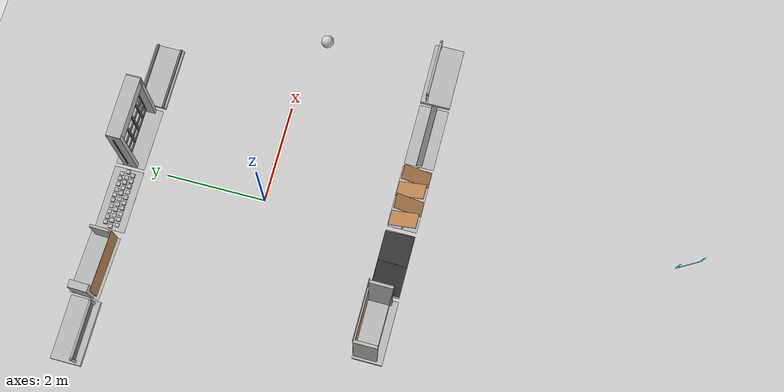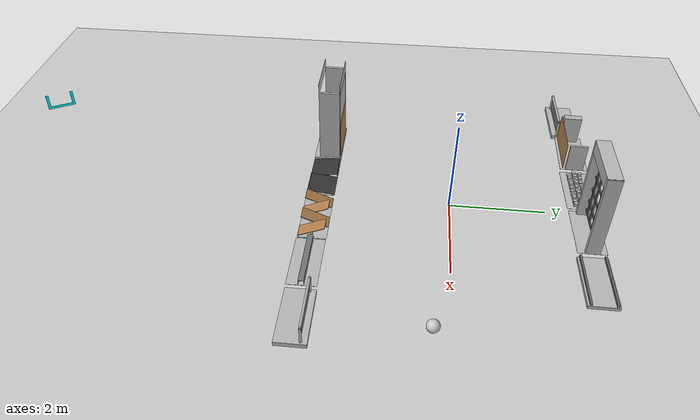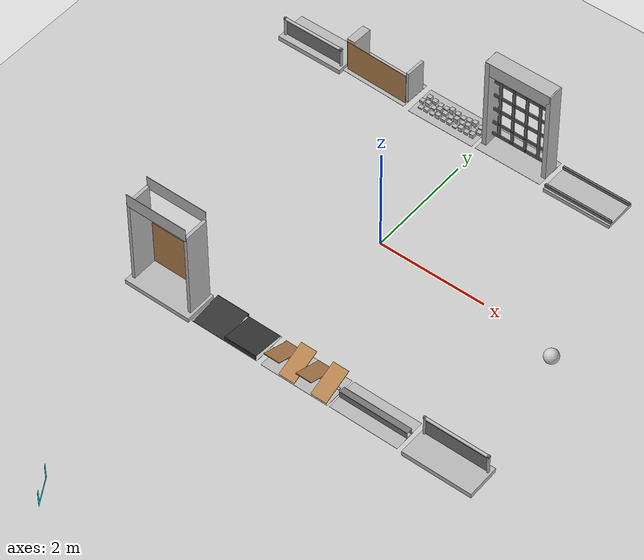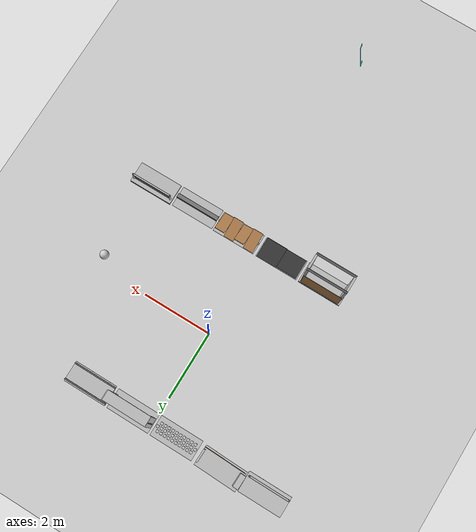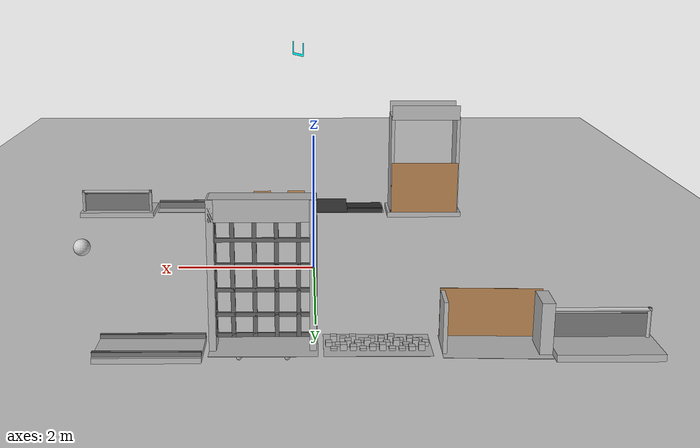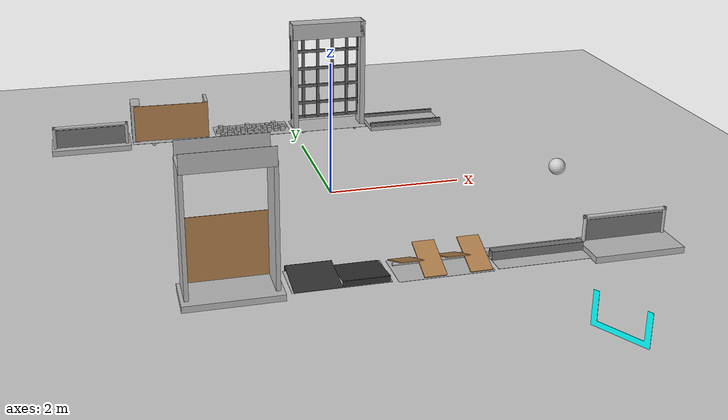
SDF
<sdf version="1.7">
 <world name="default">
  <light name="sun" type="directional">
   <pose>0 0 10 0 -0 0</pose>
   <diffuse>0.8 0.8 0.8 1</diffuse>
   <specular>0.2 0.2 0.2 1</specular>
   <attenuation>
    <range>1000</range>
    <constant>0.9</constant>
    <linear>0.01</linear>
    <quadratic>0.001</quadratic>
   </attenuation>
   <direction>-0.5 0.1 -0.9</direction>
   <spot><inner_angle>0</inner_angle><outer_angle>0</outer_angle><falloff>0</falloff></spot>
  </light>
  <model name="ground_plane">
   <static>1</static>
   <link name="link">
    <collision name="collision">
     <geometry><plane><normal>0 0 1</normal><size>100 100</size></plane></geometry>
     <surface>
      <contact><collide_bitmask>65535</collide_bitmask></contact>
      <friction><ode><mu>100</mu><mu2>50</mu2></ode></friction>
     </surface>
    </collision>
    <visual name="visual">
     <cast_shadows>0</cast_shadows>
     <geometry><plane><normal>0 0 1</normal><size>100 100</size></plane></geometry>
     <material>
      <script><uri>file://media/materials/scripts/gazebo.material</uri><name>Gazebo/Grey</name></script>
     </material>
    </visual>
   </link>
  </model>
  <model name="ball">
   <link name="link">
    <inertial>
     <mass>0.213</mass>
     <inertia>
      <ixx>0.00322667</ixx>
      <ixy>0</ixy>
      <ixz>0</ixz>
      <iyy>0.00322667</iyy>
      <iyz>0</iyz>
      <izz>0.00322667</izz>
     </inertia>
    </inertial>
    <visual name="visual">
     <material><ambient>0.8 0.8 0.8 1</ambient><diffuse>0.8 0.8 0.8 1</diffuse></material>
     <geometry><sphere><radius>0.127</radius></sphere></geometry>
    </visual>
    <collision name="collision">
     <geometry><sphere><radius>0.127</radius></sphere></geometry>
     <surface>
      <friction><ode><mu>2</mu><mu2>2</mu2></ode></friction>
      <contact>
       <ode>
        <max_vel>0.1</max_vel>
        <soft_cfm>0.8</soft_cfm>
        <soft_erp>0.8</soft_erp>
        <kd>200</kd>
        <kp>50000</kp>
        <min_depth>0.0001</min_depth>
       </ode>
      </contact>
     </surface>
    </collision>
   </link>
   <pose>3.49762 -0.331885 0.212737 -0.068682 -0.142198 -0.005084</pose>
  </model>
  <model name="TapePattern">
   <pose>0.174 -7.689 2.12 0.000148 0.000257 0.52429</pose>
   <link name="Body">
    <gravity>0</gravity>
    <pose>0.00127 -0.254 0.1016 1.5708 0 -1.5708</pose>
    <must_be_base_link>1</must_be_base_link>
    <velocity_decay><linear>0</linear><angular>0</angular></velocity_decay>
    <visual name="Body_visual">
     <pose>0.037283 -0.097987 -0.00127 0 -0 0</pose>
     <material><ambient>0 1 1 1</ambient><diffuse>0 1 1 1</diffuse><emissive>0.2 1 1 1</emissive></material>
     <geometry><mesh><scale>1 1 1</scale><uri>model://TapePattern/meshes/Body.STL</uri></mesh></geometry>
    </visual>
    <inertial>
     <inertia><ixx>1</ixx><ixy>0</ixy><ixz>0</ixz><iyy>1</iyy><iyz>0</iyz><izz>1</izz></inertia>
     <mass>1</mass>
    </inertial>
   </link>
  </model>
  <model name="TapePattern">
   <pose>0.174 -7.689 2.12 0.000148 0.000257 0.52429</pose>
   <link name="Body">
    <gravity>0</gravity>
    <pose>0.00127 -0.254 0.1016 1.5708 0 -1.5708</pose>
    <must_be_base_link>1</must_be_base_link>
    <velocity_decay><linear>0</linear><angular>0</angular></velocity_decay>
    <visual name="Body_visual">
     <pose>0.037283 -0.097987 -0.00127 0 -0 0</pose>
     <material><ambient>0 1 1 1</ambient><diffuse>0 1 1 1</diffuse><emissive>0.2 1 1 1</emissive></material>
     <geometry><mesh><scale>1 1 1</scale><uri>model://TapePattern/meshes/Body.STL</uri></mesh></geometry>
    </visual>
    <inertial>
     <inertia><ixx>1</ixx><ixy>0</ixy><ixz>0</ixz><iyy>1</iyy><iyz>0</iyz><izz>1</izz></inertia>
     <mass>1</mass>
    </inertial>
   </link>
  </model>
  <model name="frc2016_rockwall">
   <static>1</static>
   <link name="link">
    <inertial>
     <mass>10</mass>
     <pose>0 0 0.08974 0 -0 0</pose>
     <inertia><ixx>0.327091</ixx><ixy>0</ixy><ixz>0</ixz><iyy>1.37417</iyy><iyz>0</iyz><izz>1.64109</izz></inertia>
    </inertial>
    <visual name="platform">
     <pose>0 0 0.06432 0 -0 0</pose>
     <geometry><box><size>1.27 0.5969 0.003175</size></box></geometry>
    </visual>
    <collision name="platform">
     <pose>0 0 0.06432 0 -0 0</pose>
     <geometry><box><size>1.27 0.5969 0.003175</size></box></geometry>
    </collision>
    <visual name="up1">
     <pose>0 0.05166 0.12537 0 -0 0</pose>
     <geometry><box><size>1.27 0.00462 0.11892</size></box></geometry>
     <material><ambient>0.46 0.46 0.46 1</ambient><diffuse>0.46 0.46 0.46 1</diffuse></material>
    </visual>
    <collision name="up1">
     <pose>0 0.05166 0.12537 0 -0 0</pose>
     <geometry><box><size>1.27 0.00462 0.11892</size></box></geometry>
    </collision>
    <visual name="up2">
     <pose>0 -0.05801 0.12537 0 -0 0</pose>
     <geometry><box><size>1.27 0.00462 0.11892</size></box></geometry>
     <material><ambient>0.46 0.46 0.46 1</ambient><diffuse>0.46 0.46 0.46 1</diffuse></material>
    </visual>
    <collision name="up2">
     <pose>0 -0.05801 0.12537 0 -0 0</pose>
     <geometry><box><size>1.27 0.00462 0.11892</size></box></geometry>
    </collision>
    <visual name="top">
     <pose>0 -0.00249 0.18252 0 -0 0</pose>
     <geometry><box><size>1.27 0.1143 0.00462</size></box></geometry>
     <material><ambient>0.46 0.46 0.46 1</ambient><diffuse>0.46 0.46 0.46 1</diffuse></material>
    </visual>
    <collision name="top">
     <pose>0 -0.00249 0.18252 0 -0 0</pose>
     <geometry><box><size>1.27 0.1143 0.00462</size></box></geometry>
    </collision>
   </link>
   <pose>2.06823 -2.76985 0.027 0 -0 0</pose>
  </model>
  <model name="frc2016_moat">
   <static>1</static>
   <link name="link">
    <inertial>
     <mass>10</mass>
     <pose>0 0 0.06738 0 -0 0</pose>
     <inertia><ixx>0.312195</ixx><ixy>0</ixy><ixz>0</ixz><iyy>1.35927</iyy><iyz>0</iyz><izz>1.64109</izz></inertia>
    </inertial>
    <visual name="platform">
     <pose>0 0 0.0381 0 -0 0</pose>
     <geometry><box><size>1.27 0.5969 0.0762</size></box></geometry>
    </visual>
    <collision name="platform">
     <pose>0 0 0.0381 0 -0 0</pose>
     <geometry><box><size>1.27 0.5969 0.0762</size></box></geometry>
    </collision>
    <visual name="tube1_side1">
     <pose>0 -0.25876 0.10301 0 -0 0</pose>
     <geometry><box><size>1.27 0.003175 0.0635</size></box></geometry>
     <material><ambient>0.46 0.46 0.46 1</ambient><diffuse>0.46 0.46 0.46 1</diffuse></material>
    </visual>
    <collision name="tube1_side1">
     <pose>0 -0.25876 0.10301 0 -0 0</pose>
     <geometry><box><size>1.27 0.003175 0.0635</size></box></geometry>
    </collision>
    <visual name="tube1_side2">
     <pose>0 -0.22384 0.10301 0 -0 0</pose>
     <geometry><box><size>1.27 0.003175 0.0635</size></box></geometry>
     <material><ambient>0.46 0.46 0.46 1</ambient><diffuse>0.46 0.46 0.46 1</diffuse></material>
    </visual>
    <collision name="tube1_side2">
     <pose>0 -0.22384 0.10301 0 -0 0</pose>
     <geometry><box><size>1.27 0.003175 0.0635</size></box></geometry>
    </collision>
    <visual name="tube1_top">
     <pose>0 -0.2413 0.13317 0 -0 0</pose>
     <geometry><box><size>1.27 0.0381 0.003175</size></box></geometry>
     <material><ambient>0.46 0.46 0.46 1</ambient><diffuse>0.46 0.46 0.46 1</diffuse></material>
    </visual>
    <collision name="tube1_top">
     <pose>0 -0.2413 0.13317 0 -0 0</pose>
     <geometry><box><size>1.27 0.0381 0.003175</size></box></geometry>
    </collision>
    <visual name="tube2_side1">
     <pose>0 0.22384 0.10301 0 -0 0</pose>
     <geometry><box><size>1.27 0.003175 0.0635</size></box></geometry>
     <material><ambient>0.46 0.46 0.46 1</ambient><diffuse>0.46 0.46 0.46 1</diffuse></material>
    </visual>
    <collision name="tube2_side1">
     <pose>0 0.22384 0.10301 0 -0 0</pose>
     <geometry><box><size>1.27 0.003175 0.0635</size></box></geometry>
    </collision>
    <visual name="tube2_side2">
     <pose>0 0.25876 0.10301 0 -0 0</pose>
     <geometry><box><size>1.27 0.003175 0.0635</size></box></geometry>
     <material><ambient>0.46 0.46 0.46 1</ambient><diffuse>0.46 0.46 0.46 1</diffuse></material>
    </visual>
    <collision name="tube2_side2">
     <pose>0 0.25876 0.10301 0 -0 0</pose>
     <geometry><box><size>1.27 0.003175 0.0635</size></box></geometry>
    </collision>
    <visual name="tube2_top">
     <pose>0 0.2413 0.13317 0 -0 0</pose>
     <geometry><box><size>1.27 0.0381 0.003175</size></box></geometry>
     <material><ambient>0.46 0.46 0.46 1</ambient><diffuse>0.46 0.46 0.46 1</diffuse></material>
    </visual>
    <collision name="tube2_top">
     <pose>0 0.2413 0.13317 0 -0 0</pose>
     <geometry><box><size>1.27 0.0381 0.003175</size></box></geometry>
    </collision>
   </link>
   <pose>1.95991 2.75242 -0.019486 0 -0 0</pose>
  </model>
  <model name="frc2016_roughterrain">
   <static>1</static>
   <link name="link">
    <visual name="platform">
     <pose>0 0 0.08269 0 -0 0</pose>
     <geometry><box><size>1.27 0.5969 0.003175</size></box></geometry>
    </visual>
    <collision name="platform">
     <pose>0 0 0.08269 0 -0 0</pose>
     <geometry><box><size>1.27 0.5969 0.003175</size></box></geometry>
    </collision>
    <visual name="row1_block1_sm">
     <pose>0.51435 0.1143 0.09698 0 -0 0</pose>
     <geometry><box><size>0.0762 0.0762 0.0254</size></box></geometry>
    </visual>
    <collision name="row1_block1_sm">
     <pose>0.51435 0.1143 0.09698 0 -0 0</pose>
     <geometry><box><size>0.0762 0.0762 0.0254</size></box></geometry>
    </collision>
    <visual name="row1_block2_lg">
     <pose>0.40005 0.1143 0.12238 0 -0 0</pose>
     <geometry><box><size>0.0762 0.0762 0.0762</size></box></geometry>
    </visual>
    <collision name="row1_block2_lg">
     <pose>0.40005 0.1143 0.12238 0 -0 0</pose>
     <geometry><box><size>0.0762 0.0762 0.0762</size></box></geometry>
    </collision>
    <visual name="row1_block3_md">
     <pose>0.28575 0.1143 0.10968 0 -0 0</pose>
     <geometry><box><size>0.0762 0.0762 0.0508</size></box></geometry>
    </visual>
    <collision name="row1_block3_md">
     <pose>0.28575 0.1143 0.10968 0 -0 0</pose>
     <geometry><box><size>0.0762 0.0762 0.0508</size></box></geometry>
    </collision>
    <visual name="row1_block4_sm">
     <pose>0.17145 0.1143 0.09698 0 -0 0</pose>
     <geometry><box><size>0.0762 0.0762 0.0254</size></box></geometry>
    </visual>
    <collision name="row1_block4_sm">
     <pose>0.17145 0.1143 0.09698 0 -0 0</pose>
     <geometry><box><size>0.0762 0.0762 0.0254</size></box></geometry>
    </collision>
    <visual name="row1_block5_md">
     <pose>0.05715 0.1143 0.10968 0 -0 0</pose>
     <geometry><box><size>0.0762 0.0762 0.0508</size></box></geometry>
    </visual>
    <collision name="row1_block5_md">
     <pose>0.05715 0.1143 0.10968 0 -0 0</pose>
     <geometry><box><size>0.0762 0.0762 0.0508</size></box></geometry>
    </collision>
    <visual name="row1_block6_lg">
     <pose>-0.05715 0.1143 0.12238 0 -0 0</pose>
     <geometry><box><size>0.0762 0.0762 0.0762</size></box></geometry>
    </visual>
    <collision name="row1_block6_lg">
     <pose>-0.05715 0.1143 0.12238 0 -0 0</pose>
     <geometry><box><size>0.0762 0.0762 0.0762</size></box></geometry>
    </collision>
    <visual name="row1_block7_sm">
     <pose>-0.17145 0.1143 0.09698 0 -0 0</pose>
     <geometry><box><size>0.0762 0.0762 0.0254</size></box></geometry>
    </visual>
    <collision name="row1_block7_sm">
     <pose>-0.17145 0.1143 0.09698 0 -0 0</pose>
     <geometry><box><size>0.0762 0.0762 0.0254</size></box></geometry>
    </collision>
    <visual name="row1_block8_sm">
     <pose>-0.28575 0.1143 0.09698 0 -0 0</pose>
     <geometry><box><size>0.0762 0.0762 0.0254</size></box></geometry>
    </visual>
    <collision name="row1_block8_sm">
     <pose>-0.28575 0.1143 0.09698 0 -0 0</pose>
     <geometry><box><size>0.0762 0.0762 0.0254</size></box></geometry>
    </collision>
    <visual name="row1_block9_md">
     <pose>-0.40005 0.1143 0.10968 0 -0 0</pose>
     <geometry><box><size>0.0762 0.0762 0.0508</size></box></geometry>
    </visual>
    <collision name="row1_block9_md">
     <pose>-0.40005 0.1143 0.10968 0 -0 0</pose>
     <geometry><box><size>0.0762 0.0762 0.0508</size></box></geometry>
    </collision>
    <visual name="row1_block10_lg">
     <pose>-0.51435 0.1143 0.12238 0 -0 0</pose>
     <geometry><box><size>0.0762 0.0762 0.0762</size></box></geometry>
    </visual>
    <collision name="row1_block10_lg">
     <pose>-0.51435 0.1143 0.12238 0 -0 0</pose>
     <geometry><box><size>0.0762 0.0762 0.0762</size></box></geometry>
    </collision>
    <visual name="row2_block1_md">
     <pose>0.5715 0 0.10968 0 -0 0</pose>
     <geometry><box><size>0.0762 0.0762 0.0508</size></box></geometry>
    </visual>
    <collision name="row2_block1_md">
     <pose>0.5715 0 0.10968 0 -0 0</pose>
     <geometry><box><size>0.0762 0.0762 0.0508</size></box></geometry>
    </collision>
    <visual name="row2_block2_sm">
     <pose>0.4572 0 0.09698 0 -0 0</pose>
     <geometry><box><size>0.0762 0.0762 0.0254</size></box></geometry>
    </visual>
    <collision name="row2_block2_sm">
     <pose>0.4572 0 0.09698 0 -0 0</pose>
     <geometry><box><size>0.0762 0.0762 0.0254</size></box></geometry>
    </collision>
    <visual name="row2_block3_lg">
     <pose>0.3429 0 0.12238 0 -0 0</pose>
     <geometry><box><size>0.0762 0.0762 0.0762</size></box></geometry>
    </visual>
    <collision name="row2_block3_lg">
     <pose>0.3429 0 0.12238 0 -0 0</pose>
     <geometry><box><size>0.0762 0.0762 0.0762</size></box></geometry>
    </collision>
    <visual name="row2_block4_md">
     <pose>0.2286 0 0.10968 0 -0 0</pose>
     <geometry><box><size>0.0762 0.0762 0.0508</size></box></geometry>
    </visual>
    <collision name="row2_block4_md">
     <pose>0.2286 0 0.10968 0 -0 0</pose>
     <geometry><box><size>0.0762 0.0762 0.0508</size></box></geometry>
    </collision>
    <visual name="row2_block5_lg">
     <pose>0.1143 0 0.12238 0 -0 0</pose>
     <geometry><box><size>0.0762 0.0762 0.0762</size></box></geometry>
    </visual>
    <collision name="row2_block5_lg">
     <pose>0.1143 0 0.12238 0 -0 0</pose>
     <geometry><box><size>0.0762 0.0762 0.0762</size></box></geometry>
    </collision>
    <visual name="row2_block6_sm">
     <pose>0 0 0.09698 0 -0 0</pose>
     <geometry><box><size>0.0762 0.0762 0.0254</size></box></geometry>
    </visual>
    <collision name="row2_block6_sm">
     <pose>0 0 0.09698 0 -0 0</pose>
     <geometry><box><size>0.0762 0.0762 0.0254</size></box></geometry>
    </collision>
    <visual name="row2_block7_md">
     <pose>-0.1143 0 0.10968 0 -0 0</pose>
     <geometry><box><size>0.0762 0.0762 0.0508</size></box></geometry>
    </visual>
    <collision name="row2_block7_md">
     <pose>-0.1143 0 0.10968 0 -0 0</pose>
     <geometry><box><size>0.0762 0.0762 0.0508</size></box></geometry>
    </collision>
    <visual name="row2_block8_lg">
     <pose>-0.2286 0 0.12238 0 -0 0</pose>
     <geometry><box><size>0.0762 0.0762 0.0762</size></box></geometry>
    </visual>
    <collision name="row2_block8_lg">
     <pose>-0.2286 0 0.12238 0 -0 0</pose>
     <geometry><box><size>0.0762 0.0762 0.0762</size></box></geometry>
    </collision>
    <visual name="row2_block9_sm">
     <pose>-0.3429 0 0.09698 0 -0 0</pose>
     <geometry><box><size>0.0762 0.0762 0.0254</size></box></geometry>
    </visual>
    <collision name="row2_block9_sm">
     <pose>-0.3429 0 0.09698 0 -0 0</pose>
     <geometry><box><size>0.0762 0.0762 0.0254</size></box></geometry>
    </collision>
    <visual name="row2_block10_lg">
     <pose>-0.4572 0 0.12238 0 -0 0</pose>
     <geometry><box><size>0.0762 0.0762 0.0762</size></box></geometry>
    </visual>
    <collision name="row2_block10_lg">
     <pose>-0.4572 0 0.12238 0 -0 0</pose>
     <geometry><box><size>0.0762 0.0762 0.0762</size></box></geometry>
    </collision>
    <visual name="row2_block11_md">
     <pose>-0.5715 0 0.10968 0 -0 0</pose>
     <geometry><box><size>0.0762 0.0762 0.0508</size></box></geometry>
    </visual>
    <collision name="row2_block11_md">
     <pose>-0.5715 0 0.10968 0 -0 0</pose>
     <geometry><box><size>0.0762 0.0762 0.0508</size></box></geometry>
    </collision>
    <visual name="row3_block1_lg">
     <pose>0.51435 -0.1143 0.12238 0 -0 0</pose>
     <geometry><box><size>0.0762 0.0762 0.0762</size></box></geometry>
    </visual>
    <collision name="row3_block1_lg">
     <pose>0.51435 -0.1143 0.12238 0 -0 0</pose>
     <geometry><box><size>0.0762 0.0762 0.0762</size></box></geometry>
    </collision>
    <visual name="row3_block2_md">
     <pose>0.40005 -0.1143 0.10968 0 -0 0</pose>
     <geometry><box><size>0.0762 0.0762 0.0508</size></box></geometry>
    </visual>
    <collision name="row3_block2_md">
     <pose>0.40005 -0.1143 0.10968 0 -0 0</pose>
     <geometry><box><size>0.0762 0.0762 0.0508</size></box></geometry>
    </collision>
    <visual name="row3_block3_lg">
     <pose>0.28575 -0.1143 0.12238 0 -0 0</pose>
     <geometry><box><size>0.0762 0.0762 0.0762</size></box></geometry>
    </visual>
    <collision name="row3_block3_lg">
     <pose>0.28575 -0.1143 0.12238 0 -0 0</pose>
     <geometry><box><size>0.0762 0.0762 0.0762</size></box></geometry>
    </collision>
    <visual name="row3_block4_sm">
     <pose>0.17145 -0.1143 0.09698 0 -0 0</pose>
     <geometry><box><size>0.0762 0.0762 0.0254</size></box></geometry>
    </visual>
    <collision name="row3_block4_sm">
     <pose>0.17145 -0.1143 0.09698 0 -0 0</pose>
     <geometry><box><size>0.0762 0.0762 0.0254</size></box></geometry>
    </collision>
    <visual name="row3_block5_md">
     <pose>0.05715 -0.1143 0.10968 0 -0 0</pose>
     <geometry><box><size>0.0762 0.0762 0.0508</size></box></geometry>
    </visual>
    <collision name="row3_block5_md">
     <pose>0.05715 -0.1143 0.10968 0 -0 0</pose>
     <geometry><box><size>0.0762 0.0762 0.0508</size></box></geometry>
    </collision>
    <visual name="row3_block6_md">
     <pose>-0.05715 -0.1143 0.10968 0 -0 0</pose>
     <geometry><box><size>0.0762 0.0762 0.0508</size></box></geometry>
    </visual>
    <collision name="row3_block6_md">
     <pose>-0.05715 -0.1143 0.10968 0 -0 0</pose>
     <geometry><box><size>0.0762 0.0762 0.0508</size></box></geometry>
    </collision>
    <visual name="row3_block7_lg">
     <pose>-0.17145 -0.1143 0.12238 0 -0 0</pose>
     <geometry><box><size>0.0762 0.0762 0.0762</size></box></geometry>
    </visual>
    <collision name="row3_block7_lg">
     <pose>-0.17145 -0.1143 0.12238 0 -0 0</pose>
     <geometry><box><size>0.0762 0.0762 0.0762</size></box></geometry>
    </collision>
    <visual name="row3_block8_sm">
     <pose>-0.28575 -0.1143 0.09698 0 -0 0</pose>
     <geometry><box><size>0.0762 0.0762 0.0254</size></box></geometry>
    </visual>
    <collision name="row3_block8_sm">
     <pose>-0.28575 -0.1143 0.09698 0 -0 0</pose>
     <geometry><box><size>0.0762 0.0762 0.0254</size></box></geometry>
    </collision>
    <visual name="row3_block9_md">
     <pose>-0.40005 -0.1143 0.10968 0 -0 0</pose>
     <geometry><box><size>0.0762 0.0762 0.0508</size></box></geometry>
    </visual>
    <collision name="row3_block9_md">
     <pose>-0.40005 -0.1143 0.10968 0 -0 0</pose>
     <geometry><box><size>0.0762 0.0762 0.0508</size></box></geometry>
    </collision>
    <visual name="row3_block10_sm">
     <pose>-0.51435 -0.1143 0.09698 0 -0 0</pose>
     <geometry><box><size>0.0762 0.0762 0.0254</size></box></geometry>
    </visual>
    <collision name="row3_block10_sm">
     <pose>-0.51435 -0.1143 0.09698 0 -0 0</pose>
     <geometry><box><size>0.0762 0.0762 0.0254</size></box></geometry>
    </collision>
   </link>
   <pose>-0.722604 2.76071 -0.008615 0 -0 0</pose>
  </model>
  <model name="frc2016_ramparts">
   <static>1</static>
   <link name="link">
    <visual name="platform">
     <pose>0 0 0.06967 0 -0 0</pose>
     <geometry><box><size>1.27 0.5969 0.003175</size></box></geometry>
    </visual>
    <collision name="platform">
     <pose>0 0 0.06967 0 -0 0</pose>
     <geometry><box><size>1.27 0.5969 0.003175</size></box></geometry>
    </collision>
    <visual name="ramp1">
     <pose>0.30472 0.00588 0.1109 -0.13 0 0</pose>
     <geometry><box><size>0.60957 0.588891 0.00462</size></box></geometry>
     <material><ambient>0.2 0.2 0.2 1</ambient><diffuse>0.2 0.2 0.2 1</diffuse></material>
    </visual>
    <collision name="ramp1">
     <pose>0.30472 0.00588 0.1109 -0.13 0 0</pose>
     <geometry><box><size>0.60957 0.588891 0.00462</size></box></geometry>
    </collision>
    <visual name="up1">
     <pose>0.30472 -0.28806 0.11072 0 -0 0</pose>
     <geometry><box><size>0.60957 0.00462 0.07872</size></box></geometry>
     <material><ambient>0.2 0.2 0.2 1</ambient><diffuse>0.2 0.2 0.2 1</diffuse></material>
    </visual>
    <collision name="up1">
     <pose>0.30472 -0.28806 0.11072 0 -0 0</pose>
     <geometry><box><size>0.60957 0.00462 0.07872</size></box></geometry>
    </collision>
    <visual name="ramp2">
     <pose>-0.30472 -0.00619 0.1109 0.13 -0 0</pose>
     <geometry><box><size>0.60957 0.588891 0.00462</size></box></geometry>
     <material><ambient>0.2 0.2 0.2 1</ambient><diffuse>0.2 0.2 0.2 1</diffuse></material>
    </visual>
    <collision name="ramp2">
     <pose>-0.30472 -0.00619 0.1109 0.13 -0 0</pose>
     <geometry><box><size>0.60957 0.588891 0.00462</size></box></geometry>
    </collision>
    <visual name="up2">
     <pose>-0.30472 0.28806 0.11072 0 -0 0</pose>
     <geometry><box><size>0.60957 0.00462 0.07872</size></box></geometry>
     <material><ambient>0.2 0.2 0.2 1</ambient><diffuse>0.2 0.2 0.2 1</diffuse></material>
    </visual>
    <collision name="up2">
     <pose>-0.30472 0.28806 0.11072 0 -0 0</pose>
     <geometry><box><size>0.60957 0.00462 0.07872</size></box></geometry>
    </collision>
   </link>
   <pose>-0.597075 -2.76033 0.015 0 -0 0</pose>
  </model>
  <model name="lowbar1">
   <link name="base">
    <inertial>
     <mass>50</mass>
     <inertia>
      <ixx>0.035543</ixx>
      <ixy>0</ixy>
      <ixz>0</ixz>
      <iyy>0.134412</iyy>
      <iyz>0</iyz>
      <izz>0.165376</izz>
     </inertia>
    </inertial>
    <visual name="platform">
     <pose>0 0 0.039065 0 -0 0</pose>
     <geometry><box><size>1.27 0.6 0.089</size></box></geometry>
    </visual>
    <collision name="platform">
     <pose>0 0 0.039065 0 -0 0</pose>
     <geometry><box><size>1.27 0.6 0.089</size></box></geometry>
    </collision>
    <visual name="right_column">
     <pose>-0.57845 -0.18464 0.26863 0 -0 0</pose>
     <geometry><cylinder><radius>0.0254</radius><length>0.381</length></cylinder></geometry>
    </visual>
    <collision name="right_column">
     <pose>-0.57845 -0.18464 0.26863 0 -0 0</pose>
     <geometry><cylinder><radius>0.0254</radius><length>0.381</length></cylinder></geometry>
    </collision>
    <visual name="left_column">
     <pose>0.57845 -0.18464 0.26863 0 -0 0</pose>
     <geometry><cylinder><radius>0.0254</radius><length>0.381</length></cylinder></geometry>
    </visual>
    <collision name="left_column">
     <pose>0.57845 -0.18464 0.26863 0 -0 0</pose>
     <geometry><cylinder><radius>0.0254</radius><length>0.381</length></cylinder></geometry>
    </collision>
    <visual name="horizontal">
     <pose>0 -0.18464 0.43556 0 1.5707 0</pose>
     <geometry><cylinder><radius>0.0254</radius><length>1.2018</length></cylinder></geometry>
    </visual>
    <collision name="horizontal">
     <pose>0 -0.18464 0.43556 0 1.5707 0</pose>
     <geometry><cylinder><radius>0.0254</radius><length>1.2018</length></cylinder></geometry>
    </collision>
   </link>
   <link name="wall">
    <pose>0 -0.1778 0.24323 0 -0 0</pose>
    <inertial>
     <mass>1</mass>
     <inertia>
      <ixx>0.00774528</ixx>
      <ixy>0</ixy>
      <ixz>0</ixz>
      <iyy>0.116613</iyy>
      <iyz>0</iyz>
      <izz>0.108874</izz>
     </inertia>
    </inertial>
    <visual name="visual">
     <geometry><box><size>1.1176 0.00635 0.3</size></box></geometry>
     <material><ambient>0.46 0.46 0.46 1</ambient><diffuse>0.46 0.46 0.46 1</diffuse></material>
    </visual>
    <collision name="collision"><geometry><box><size>1.143 0.00635 0.3</size></box></geometry></collision>
   </link>
   <joint name="bar_joint" type="revolute">
    <pose>0 0 0.36378 0 -0 0</pose>
    <parent>base</parent>
    <child>wall</child>
    <axis>
     <xyz>1 0 0</xyz>
     <limit><lower>-1.5707</lower><upper>1.5707</upper></limit>
     <dynamics>
      <damping>1</damping>
      <friction>1</friction>
      <spring_reference>0</spring_reference>
      <spring_stiffness>0</spring_stiffness>
     </dynamics>
    </axis>
   </joint>
   <pose>-3.41311 2.77187 0.005428 2.5e-05 -0 -1.1e-05</pose>
  </model>
  <model name="frc2016_sallyport">
   <link name="base">
    <inertial>
     <mass>50</mass>
     <pose>0 0 0.35406 0 -0 0</pose>
     <inertia><ixx>0.727808</ixx><ixy>0</ixy><ixz>0</ixz><iyy>1.77488</iyy><iyz>0</iyz><izz>1.64109</izz></inertia>
    </inertial>
    <visual name="platform">
     <pose>0 0 0.06974 0 -0 0</pose>
     <geometry><box><size>1.27 0.5969 0.003175</size></box></geometry>
    </visual>
    <collision name="platform">
     <pose>0 0 0.06974 0 -0 0</pose>
     <geometry><box><size>1.27 0.5969 0.003175</size></box></geometry>
    </collision>
    <visual name="left_column">
     <pose>-0.5588 0.00318 0.38876 0 -0 0</pose>
     <geometry><box><size>0.1524 0.38735 0.635</size></box></geometry>
    </visual>
    <collision name="left_column">
     <pose>-0.5588 0.00318 0.38876 0 -0 0</pose>
     <geometry><box><size>0.1524 0.38735 0.635</size></box></geometry>
    </collision>
    <visual name="right_column">
     <pose>0.6096 0.00635 0.38876 0 -0 0</pose>
     <geometry><box><size>0.0508 0.381 0.635</size></box></geometry>
    </visual>
    <collision name="right_column">
     <pose>0.6096 0.00635 0.38876 0 -0 0</pose>
     <geometry><box><size>0.0508 0.381 0.635</size></box></geometry>
    </collision>
    <visual name="castor1">
     <pose>-0.45886 0.15389 0.03487 0 -0 0</pose>
     <geometry><sphere><radius>0.03487</radius></sphere></geometry>
    </visual>
    <collision name="castor1">
     <pose>-0.45886 0.15389 0.03487 0 -0 0</pose>
     <geometry><sphere><radius>0.03487</radius></sphere></geometry>
    </collision>
    <visual name="castor2">
     <pose>-0.28117 -0.22559 0.03487 0 -0 0</pose>
     <geometry><sphere><radius>0.03487</radius></sphere></geometry>
    </visual>
    <collision name="castor2">
     <pose>-0.28117 -0.22559 0.03487 0 -0 0</pose>
     <geometry><sphere><radius>0.03487</radius></sphere></geometry>
    </collision>
    <visual name="castor3">
     <pose>0.27933 -0.2272 0.03487 0 -0 0</pose>
     <geometry><sphere><radius>0.03487</radius></sphere></geometry>
    </visual>
    <collision name="castor3">
     <pose>0.27933 -0.2272 0.03487 0 -0 0</pose>
     <geometry><sphere><radius>0.03487</radius></sphere></geometry>
    </collision>
    <visual name="castor4">
     <pose>0.4571 0.15424 0.03487 0 -0 0</pose>
     <geometry><sphere><radius>0.03487</radius></sphere></geometry>
    </visual>
    <collision name="castor4">
     <pose>0.4571 0.15424 0.03487 0 -0 0</pose>
     <geometry><sphere><radius>0.03487</radius></sphere></geometry>
    </collision>
   </link>
   <link name="door">
    <pose>0.02255 -0.24321 0.40332 0 -0 0</pose>
    <inertial>
     <pose>0 0 0 -1.5707 0 0</pose>
     <mass>2</mass>
     <inertia>
      <ixx>0.0619421</ixx>
      <ixy>0</ixy>
      <ixz>0</ixz>
      <iyy>0.246462</iyy>
      <iyz>0</iyz>
      <izz>0.30839</izz>
     </inertia>
    </inertial>
    <visual name="visual">
     <geometry><box><size>1.21603 0.00635 0.6096</size></box></geometry>
     <material><script><name>Gazebo/WoodFloor</name><uri>__default__</uri></script></material>
    </visual>
    <collision name="collision"><geometry><box><size>1.21603 0.00635 0.6096</size></box></geometry></collision>
   </link>
   <joint name="door_joint" type="revolute">
    <pose>-0.608015 0 0 0 -0 0</pose>
    <parent>base</parent>
    <child>door</child>
    <axis>
     <xyz>0 0 1</xyz>
     <limit><lower>-3.1415</lower><upper>0</upper></limit>
     <dynamics><spring_reference>0</spring_reference><spring_stiffness>0</spring_stiffness></dynamics>
    </axis>
   </joint>
   <pose>-2.10598 2.81294 0.000411 -0.002661 -0 -0.029545</pose>
  </model>
  <model name="frc2016_drawbridge">
   <link name="base">
    <inertial>
     <mass>10</mass>
     <pose>0 0 1 0 -0 0</pose>
     <inertia><ixx>3.64907</ixx><ixy>0</ixy><ixz>0</ixz><iyy>4.67075</iyy><iyz>0</iyz><izz>1.66649</izz></inertia>
    </inertial>
    <visual name="platform">
     <pose>0 0 0.0425 0 -0 0</pose>
     <geometry><box><size>1.27 0.5969 0.085</size></box></geometry>
    </visual>
    <collision name="platform">
     <pose>0 0 0.0425 0 -0 0</pose>
     <geometry><box><size>1.27 0.5969 0.085</size></box></geometry>
    </collision>
    <visual name="right_wall">
     <pose>0.55879 0.04444 0.889 0 -0 0</pose>
     <geometry><box><size>0.05715 0.45698 1.77165</size></box></geometry>
    </visual>
    <collision name="right_wall">
     <pose>0.55879 0.04444 0.889 0 -0 0</pose>
     <geometry><box><size>0.05715 0.45698 1.77165</size></box></geometry>
    </collision>
    <visual name="left_wall">
     <pose>-0.55879 0.04444 0.889 0 -0 0</pose>
     <geometry><box><size>0.05715 0.45698 1.77165</size></box></geometry>
    </visual>
    <collision name="left_wall">
     <pose>-0.55879 0.04444 0.889 0 -0 0</pose>
     <geometry><box><size>0.05715 0.45698 1.77165</size></box></geometry>
    </collision>
    <visual name="front_upper_wall">
     <pose>0 0.27611 1.84286 0 -0 0</pose>
     <geometry><box><size>1.1557 0.006347 0.254</size></box></geometry>
    </visual>
    <collision name="front_upper_wall">
     <pose>0 0.27611 1.84286 0 -0 0</pose>
     <geometry><box><size>1.1557 0.006347 0.254</size></box></geometry>
    </collision>
    <visual name="back_upper_wall">
     <pose>0 -0.18722 1.84286 0 -0 0</pose>
     <geometry><box><size>1.1557 0.006347 0.254</size></box></geometry>
    </visual>
    <collision name="back_upper_wall">
     <pose>0 -0.18722 1.84286 0 -0 0</pose>
     <geometry><box><size>1.1557 0.006347 0.254</size></box></geometry>
    </collision>
   </link>
   <link name="bridge">
    <pose>0 0.28245 0.50577 0 -0 0</pose>
    <inertial>
     <mass>2</mass>
     <pose>0 -0.28245 -0.50577 0 -0 0</pose>
     <inertia>
      <ixx>0.139361</ixx>
      <ixy>0</ixy>
      <ixz>0</ixz>
      <iyy>0.357088</iyy>
      <iyz>0</iyz>
      <izz>0.217741</izz>
     </inertia>
    </inertial>
    <visual name="visual">
     <geometry><box><size>1.14298 0.006347 0.9144</size></box></geometry>
     <material><script><name>Gazebo/WoodFloor</name><uri>__default__</uri></script></material>
    </visual>
    <collision name="collision"><geometry><box><size>1.14298 0.006347 0.9144</size></box></geometry></collision>
   </link>
   <joint name="bridge_joint" type="revolute">
    <pose>0 0 -0.4172 0 -0 0</pose>
    <parent>base</parent>
    <child>bridge</child>
    <axis>
     <xyz>1 0 0</xyz>
     <limit><lower>-2</lower><upper>0</upper></limit>
     <dynamics><spring_reference>0</spring_reference><spring_stiffness>0</spring_stiffness></dynamics>
    </axis>
   </joint>
   <pose>-1.9312 -2.7693 -2e-06 0 3e-06 -0.001626</pose>
  </model>
  <model name="frc2016_portcullis">
   <link name="base">
    <inertial>
     <mass>50</mass>
     <pose>0 0 1.02941 0 -0 0</pose>
     <inertia><ixx>3.81711</ixx><ixy>0</ixy><ixz>0</ixz><iyy>4.87698</iyy><iyz>0</iyz><izz>1.6283</izz></inertia>
    </inertial>
    <visual name="platform">
     <pose>0 0 0.07284 0 -0 0</pose>
     <geometry><box><size>1.27 0.5842 0.003175</size></box></geometry>
    </visual>
    <collision name="platform">
     <pose>0 0 0.07284 0 -0 0</pose>
     <geometry><box><size>1.27 0.5842 0.003175</size></box></geometry>
    </collision>
    <visual name="left_column">
     <pose>0.59284 0 0.99042 0 -0 0</pose>
     <geometry><box><size>0.08375 0.28575 1.83198</size></box></geometry>
    </visual>
    <collision name="left_column">
     <pose>0.59284 0 0.99042 0 -0 0</pose>
     <geometry><box><size>0.08375 0.28575 1.83198</size></box></geometry>
    </collision>
    <visual name="right_column">
     <pose>-0.57759 0 0.99042 0 -0 0</pose>
     <geometry><box><size>0.08375 0.28575 1.83198</size></box></geometry>
    </visual>
    <collision name="right_column">
     <pose>-0.57759 0 0.99042 0 -0 0</pose>
     <geometry><box><size>0.08375 0.28575 1.83198</size></box></geometry>
    </collision>
    <visual name="top">
     <pose>-0.00034 0 1.77722 0 -0 0</pose>
     <geometry><box><size>1.22962 0.28575 0.26657</size></box></geometry>
    </visual>
    <collision name="top">
     <pose>-0.00034 0 1.77722 0 -0 0</pose>
     <geometry><box><size>1.22962 0.28575 0.26657</size></box></geometry>
    </collision>
    <visual name="castor1">
     <pose>-0.45651 -0.16234 0.03272 0 -0 0</pose>
     <geometry><sphere><radius>0.03272</radius></sphere></geometry>
    </visual>
    <collision name="castor1">
     <pose>-0.45651 -0.16234 0.03272 0 -0 0</pose>
     <geometry><sphere><radius>0.03272</radius></sphere></geometry>
    </collision>
    <visual name="castor2">
     <pose>-0.27883 0.21836 0.03272 0 -0 0</pose>
     <geometry><sphere><radius>0.03272</radius></sphere></geometry>
    </visual>
    <collision name="castor2">
     <pose>-0.27883 0.21836 0.03272 0 -0 0</pose>
     <geometry><sphere><radius>0.03272</radius></sphere></geometry>
    </collision>
    <visual name="castor3">
     <pose>0.28083 0.21906 0.03272 0 -0 0</pose>
     <geometry><sphere><radius>0.03272</radius></sphere></geometry>
    </visual>
    <collision name="castor3">
     <pose>0.28083 0.21906 0.03272 0 -0 0</pose>
     <geometry><sphere><radius>0.03272</radius></sphere></geometry>
    </collision>
    <visual name="castor4">
     <pose>0.45871 -0.16186 0.03272 0 -0 0</pose>
     <geometry><sphere><radius>0.03272</radius></sphere></geometry>
    </visual>
    <collision name="castor4">
     <pose>0.45871 -0.16186 0.03272 0 -0 0</pose>
     <geometry><sphere><radius>0.03272</radius></sphere></geometry>
    </collision>
   </link>
   <link name="gate">
    <pose>-0.0287 0.02885 0.93327 0 -0 0</pose>
    <inertial>
     <mass>2</mass>
     <inertia><ixx>3.81711</ixx><ixy>0</ixy><ixz>0</ixz><iyy>4.87698</iyy><iyz>0</iyz><izz>1.6283</izz></inertia>
    </inertial>
    <collision name="collision"><geometry><box><size>1.1938 0.02496 1.45732</size></box></geometry></collision>
    <visual name="horz_1">
     <pose>0 0 -0.70326 0 -0 0</pose>
     <geometry><box><size>1.1938 0.02496 0.0508</size></box></geometry>
     <material><ambient>0.4 0.4 0.4 1</ambient><diffuse>0.4 0.4 0.4 1</diffuse></material>
    </visual>
    <visual name="horz_2">
     <pose>0 0 -0.44926 0 -0 0</pose>
     <geometry><box><size>1.1938 0.02496 0.0508</size></box></geometry>
     <material><ambient>0.4 0.4 0.4 1</ambient><diffuse>0.4 0.4 0.4 1</diffuse></material>
    </visual>
    <visual name="horz_3">
     <pose>0 0 -0.14517 0 -0 0</pose>
     <geometry><box><size>1.1938 0.02496 0.0508</size></box></geometry>
     <material><ambient>0.4 0.4 0.4 1</ambient><diffuse>0.4 0.4 0.4 1</diffuse></material>
    </visual>
    <visual name="horz_4">
     <pose>0 0 0.16034 0 -0 0</pose>
     <geometry><box><size>1.1938 0.02496 0.0508</size></box></geometry>
     <material><ambient>0.4 0.4 0.4 1</ambient><diffuse>0.4 0.4 0.4 1</diffuse></material>
    </visual>
    <visual name="horz_5">
     <pose>0 0 0.46514 0 -0 0</pose>
     <geometry><box><size>1.1938 0.02496 0.0508</size></box></geometry>
     <material><ambient>0.4 0.4 0.4 1</ambient><diffuse>0.4 0.4 0.4 1</diffuse></material>
    </visual>
    <visual name="horz_6">
     <pose>0 0 0.72994 0 -0 0</pose>
     <geometry><box><size>1.1938 0.02496 0.0508</size></box></geometry>
     <material><ambient>0.4 0.4 0.4 1</ambient><diffuse>0.4 0.4 0.4 1</diffuse></material>
    </visual>
    <visual name="vert_1">
     <pose>-0.58448 0 0 0 -0 0</pose>
     <geometry><box><size>0.02495 0.02496 1.45732</size></box></geometry>
     <material><ambient>0.4 0.4 0.4 1</ambient><diffuse>0.4 0.4 0.4 1</diffuse></material>
    </visual>
    <visual name="vert_2">
     <pose>-0.38128 0 0 0 -0 0</pose>
     <geometry><box><size>0.0508 0.02496 1.45732</size></box></geometry>
     <material><ambient>0.4 0.4 0.4 1</ambient><diffuse>0.4 0.4 0.4 1</diffuse></material>
    </visual>
    <visual name="vert_3">
     <pose>-0.12728 0 0 0 -0 0</pose>
     <geometry><box><size>0.0508 0.02496 1.45732</size></box></geometry>
     <material><ambient>0.4 0.4 0.4 1</ambient><diffuse>0.4 0.4 0.4 1</diffuse></material>
    </visual>
    <visual name="vert_4">
     <pose>0.12672 0 0 0 -0 0</pose>
     <geometry><box><size>0.0508 0.02496 1.45732</size></box></geometry>
     <material><ambient>0.4 0.4 0.4 1</ambient><diffuse>0.4 0.4 0.4 1</diffuse></material>
    </visual>
    <visual name="vert_5">
     <pose>0.38072 0 0 0 -0 0</pose>
     <geometry><box><size>0.0508 0.02496 1.45732</size></box></geometry>
     <material><ambient>0.4 0.4 0.4 1</ambient><diffuse>0.4 0.4 0.4 1</diffuse></material>
    </visual>
    <visual name="vert_6">
     <pose>0.58392 0 0 0 -0 0</pose>
     <geometry><box><size>0.02495 0.02496 1.45732</size></box></geometry>
     <material><ambient>0.4 0.4 0.4 1</ambient><diffuse>0.4 0.4 0.4 1</diffuse></material>
    </visual>
   </link>
   <joint name="joint" type="prismatic">
    <parent>base</parent>
    <child>gate</child>
    <axis>
     <xyz>0 0 1</xyz>
     <limit><lower>0</lower><upper>1</upper></limit>
     <dynamics><spring_reference>0</spring_reference><spring_stiffness>0</spring_stiffness></dynamics>
    </axis>
   </joint>
   <pose>0.610366 2.76482 0 -2e-06 1e-06 -0.002164</pose>
  </model>
  <model name="frc2016_chevaldefrise">
   <link name="base">
    <inertial>
     <mass>10</mass>
     <pose>0 0 0.15672 0 -0 0</pose>
     <inertia><ixx>0.380221</ixx><ixy>0</ixy><ixz>0</ixz><iyy>1.43365</iyy><iyz>0</iyz><izz>1.64745</izz></inertia>
    </inertial>
    <visual name="platform">
     <pose>0 0 0.06968 0 -0 0</pose>
     <geometry><box><size>1.27 0.5969 0.003175</size></box></geometry>
    </visual>
    <collision name="platform">
     <pose>0 0 0.06968 0 -0 0</pose>
     <geometry><box><size>1.27 0.5969 0.003175</size></box></geometry>
    </collision>
    <visual name="bar">
     <pose>0 0 0.16855 0 1.5707 0</pose>
     <geometry><cylinder><radius>0.02108</radius><length>1.273</length></cylinder></geometry>
    </visual>
    <collision name="bar">
     <pose>0 0 0.16855 0 1.5707 0</pose>
     <geometry><cylinder><radius>0.02108</radius><length>1.27</length></cylinder></geometry>
    </collision>
    <visual name="castor1">
     <pose>-0.45653 -0.16581 0.03175 0 -0 0</pose>
     <geometry><sphere><radius>0.03175</radius></sphere></geometry>
    </visual>
    <collision name="castor1">
     <pose>-0.45653 -0.16581 0.03175 0 -0 0</pose>
     <geometry><sphere><radius>0.03175</radius></sphere></geometry>
    </collision>
    <visual name="castor2">
     <pose>-0.27855 0.21408 0.03175 0 -0 0</pose>
     <geometry><sphere><radius>0.03175</radius></sphere></geometry>
    </visual>
    <collision name="castor2">
     <pose>-0.27855 0.21408 0.03175 0 -0 0</pose>
     <geometry><sphere><radius>0.03175</radius></sphere></geometry>
    </collision>
    <visual name="castor3">
     <pose>0.28191 0.21419 0.03175 0 -0 0</pose>
     <geometry><sphere><radius>0.03175</radius></sphere></geometry>
    </visual>
    <collision name="castor3">
     <pose>0.28191 0.21419 0.03175 0 -0 0</pose>
     <geometry><sphere><radius>0.03175</radius></sphere></geometry>
    </collision>
    <visual name="castor4">
     <pose>0.45965 -0.16602 0.03175 0 -0 0</pose>
     <geometry><sphere><radius>0.03175</radius></sphere></geometry>
    </visual>
    <collision name="castor4">
     <pose>0.45965 -0.16602 0.03175 0 -0 0</pose>
     <geometry><sphere><radius>0.03175</radius></sphere></geometry>
    </collision>
   </link>
   <link name="slant1">
    <pose>-0.4572 0.01307 0.1997 -0.39732 0 0</pose>
    <inertial>
     <pose>0 0.1 0 0 -0 0</pose>
     <mass>2</mass>
     <inertia>
      <ixx>0.0606857</ixx>
      <ixy>0</ixy>
      <ixz>0</ixz>
      <iyy>0.0148723</iyy>
      <iyz>0</iyz>
      <izz>0.0755042</izz>
     </inertia>
    </inertial>
    <visual name="visual">
     <geometry><box><size>0.29845 0.593285 0.0127</size></box></geometry>
     <material><script><name>Gazebo/WoodFloor</name><uri>__default__</uri></script></material>
    </visual>
    <collision name="collision"><geometry><box><size>0.29845 0.593285 0.0127</size></box></geometry></collision>
   </link>
   <link name="slant2">
    <pose>-0.1524 -0.01307 0.1997 0.39732 -0 0</pose>
    <inertial>
     <mass>2</mass>
     <pose>0 -0.1 0 0 -0 0</pose>
     <inertia>
      <ixx>0.0606857</ixx>
      <ixy>0</ixy>
      <ixz>0</ixz>
      <iyy>0.0148723</iyy>
      <iyz>0</iyz>
      <izz>0.0755042</izz>
     </inertia>
    </inertial>
    <visual name="visual">
     <geometry><box><size>0.29845 0.593285 0.0127</size></box></geometry>
     <material><script><name>Gazebo/WoodFloor</name><uri>__default__</uri></script></material>
    </visual>
    <collision name="collision"><geometry><box><size>0.29845 0.593285 0.0127</size></box></geometry></collision>
   </link>
   <link name="slant3">
    <pose>0.1524 0.01307 0.1997 -0.39732 0 0</pose>
    <inertial>
     <pose>0 0.1 0 0 -0 0</pose>
     <mass>2</mass>
     <inertia>
      <ixx>0.0606857</ixx>
      <ixy>0</ixy>
      <ixz>0</ixz>
      <iyy>0.0148723</iyy>
      <iyz>0</iyz>
      <izz>0.0755042</izz>
     </inertia>
    </inertial>
    <visual name="visual">
     <geometry><box><size>0.29845 0.593285 0.0127</size></box></geometry>
     <material><script><name>Gazebo/WoodFloor</name><uri>__default__</uri></script></material>
    </visual>
    <collision name="collision"><geometry><box><size>0.29845 0.593285 0.0127</size></box></geometry></collision>
   </link>
   <link name="slant4">
    <pose>0.4572 -0.01307 0.1997 0.39732 -0 0</pose>
    <inertial>
     <pose>0 -0.1 0 0 -0 0</pose>
     <mass>2</mass>
     <inertia>
      <ixx>0.0606857</ixx>
      <ixy>0</ixy>
      <ixz>0</ixz>
      <iyy>0.0148723</iyy>
      <iyz>0</iyz>
      <izz>0.0755042</izz>
     </inertia>
    </inertial>
    <visual name="visual">
     <geometry><box><size>0.29845 0.593285 0.0127</size></box></geometry>
     <material><script><name>Gazebo/WoodFloor</name><uri>__default__</uri></script></material>
    </visual>
    <collision name="collision"><geometry><box><size>0.29845 0.593285 0.0127</size></box></geometry></collision>
   </link>
   <joint name="slant1_joint" type="revolute">
    <parent>base</parent>
    <child>slant1</child>
    <axis>
     <xyz>1 0 0</xyz>
     <limit><lower>0</lower><upper>1.5707</upper></limit>
     <dynamics><spring_reference>0</spring_reference><spring_stiffness>0</spring_stiffness></dynamics>
    </axis>
   </joint>
   <joint name="slant2_joint" type="revolute">
    <parent>base</parent>
    <child>slant2</child>
    <axis>
     <xyz>1 0 0</xyz>
     <limit><lower>-1.5707</lower><upper>0</upper></limit>
     <dynamics><spring_reference>0</spring_reference><spring_stiffness>0</spring_stiffness></dynamics>
    </axis>
   </joint>
   <joint name="slant3_joint" type="revolute">
    <parent>base</parent>
    <child>slant3</child>
    <axis>
     <xyz>1 0 0</xyz>
     <limit><lower>0</lower><upper>1.5707</upper></limit>
     <dynamics><spring_reference>0</spring_reference><spring_stiffness>0</spring_stiffness></dynamics>
    </axis>
   </joint>
   <joint name="slant4_joint" type="revolute">
    <parent>base</parent>
    <child>slant4</child>
    <axis>
     <xyz>1 0 0</xyz>
     <limit><lower>-1.5707</lower><upper>0</upper></limit>
     <dynamics><spring_reference>0</spring_reference><spring_stiffness>0</spring_stiffness></dynamics>
    </axis>
   </joint>
   <pose>0.754643 -2.76372 -0 0 -0 0.002686</pose>
  </model>
  <model name="lowbar2">
   <link name="base">
    <inertial>
     <mass>50</mass>
     <inertia>
      <ixx>0.035543</ixx>
      <ixy>0</ixy>
      <ixz>0</ixz>
      <iyy>0.134412</iyy>
      <iyz>0</iyz>
      <izz>0.165376</izz>
     </inertia>
    </inertial>
    <visual name="platform">
     <pose>0 0 0.039065 0 -0 0</pose>
     <geometry><box><size>1.27 0.6 0.089</size></box></geometry>
    </visual>
    <collision name="platform">
     <pose>0 0 0.039065 0 -0 0</pose>
     <geometry><box><size>1.27 0.6 0.089</size></box></geometry>
    </collision>
    <visual name="right_column">
     <pose>-0.57845 -0.18464 0.26863 0 -0 0</pose>
     <geometry><cylinder><radius>0.0254</radius><length>0.381</length></cylinder></geometry>
    </visual>
    <collision name="right_column">
     <pose>-0.57845 -0.18464 0.26863 0 -0 0</pose>
     <geometry><cylinder><radius>0.0254</radius><length>0.381</length></cylinder></geometry>
    </collision>
    <visual name="left_column">
     <pose>0.57845 -0.18464 0.26863 0 -0 0</pose>
     <geometry><cylinder><radius>0.0254</radius><length>0.381</length></cylinder></geometry>
    </visual>
    <collision name="left_column">
     <pose>0.57845 -0.18464 0.26863 0 -0 0</pose>
     <geometry><cylinder><radius>0.0254</radius><length>0.381</length></cylinder></geometry>
    </collision>
    <visual name="horizontal">
     <pose>0 -0.18464 0.43556 0 1.5707 0</pose>
     <geometry><cylinder><radius>0.0254</radius><length>1.2018</length></cylinder></geometry>
    </visual>
    <collision name="horizontal">
     <pose>0 -0.18464 0.43556 0 1.5707 0</pose>
     <geometry><cylinder><radius>0.0254</radius><length>1.2018</length></cylinder></geometry>
    </collision>
   </link>
   <link name="wall">
    <pose>0 -0.1778 0.24323 0 -0 0</pose>
    <inertial>
     <mass>1</mass>
     <inertia>
      <ixx>0.00774528</ixx>
      <ixy>0</ixy>
      <ixz>0</ixz>
      <iyy>0.116613</iyy>
      <iyz>0</iyz>
      <izz>0.108874</izz>
     </inertia>
    </inertial>
    <visual name="visual">
     <geometry><box><size>1.1176 0.00635 0.3</size></box></geometry>
     <material><ambient>0.46 0.46 0.46 1</ambient><diffuse>0.46 0.46 0.46 1</diffuse></material>
    </visual>
    <collision name="collision"><geometry><box><size>1.143 0.00635 0.3</size></box></geometry></collision>
   </link>
   <joint name="bar_joint" type="revolute">
    <pose>0 0 0.36378 0 -0 0</pose>
    <parent>base</parent>
    <child>wall</child>
    <axis>
     <xyz>1 0 0</xyz>
     <limit><lower>-1.5707</lower><upper>1.5707</upper></limit>
     <dynamics>
      <damping>1</damping>
      <friction>1</friction>
      <spring_reference>0</spring_reference>
      <spring_stiffness>0</spring_stiffness>
     </dynamics>
    </axis>
   </joint>
   <pose>3.41383 -2.76337 0.005434 -8e-06 -0 -3.13836</pose>
  </model>
  <gravity>0 0 -9.8</gravity>
  <magnetic_field>6e-06 2.3e-05 -4.2e-05</magnetic_field>
  <atmosphere type="adiabatic"/>
  <physics type="ode">
   <max_step_size>0.001</max_step_size>
   <real_time_factor>1</real_time_factor>
   <real_time_update_rate>1000</real_time_update_rate>
  </physics>
  <scene><ambient>0.4 0.4 0.4 1</ambient><background>0.7 0.7 0.7 1</background><shadows>1</shadows></scene>
  <spherical_coordinates>
   <surface_model>EARTH_WGS84</surface_model>
   <latitude_deg>0</latitude_deg>
   <longitude_deg>0</longitude_deg>
   <elevation>0</elevation>
   <heading_deg>0</heading_deg>
  </spherical_coordinates>
 </world>
</sdf>
